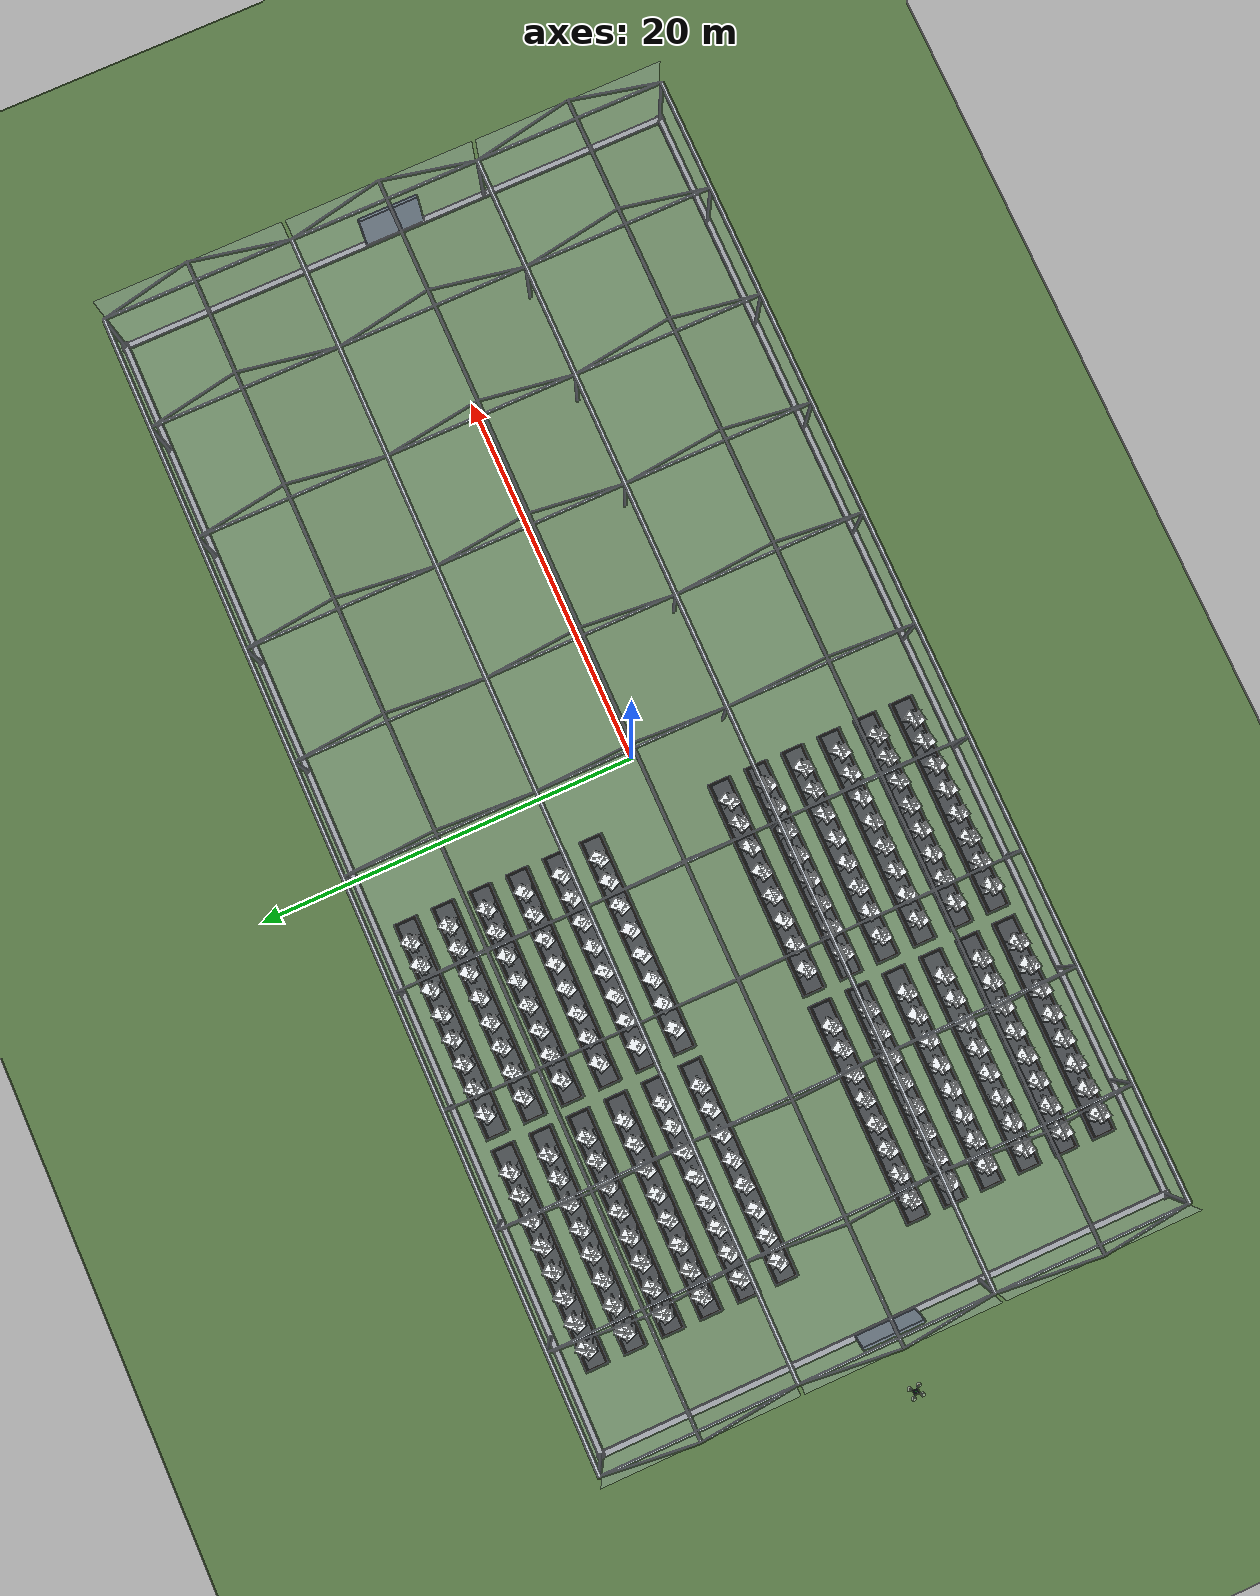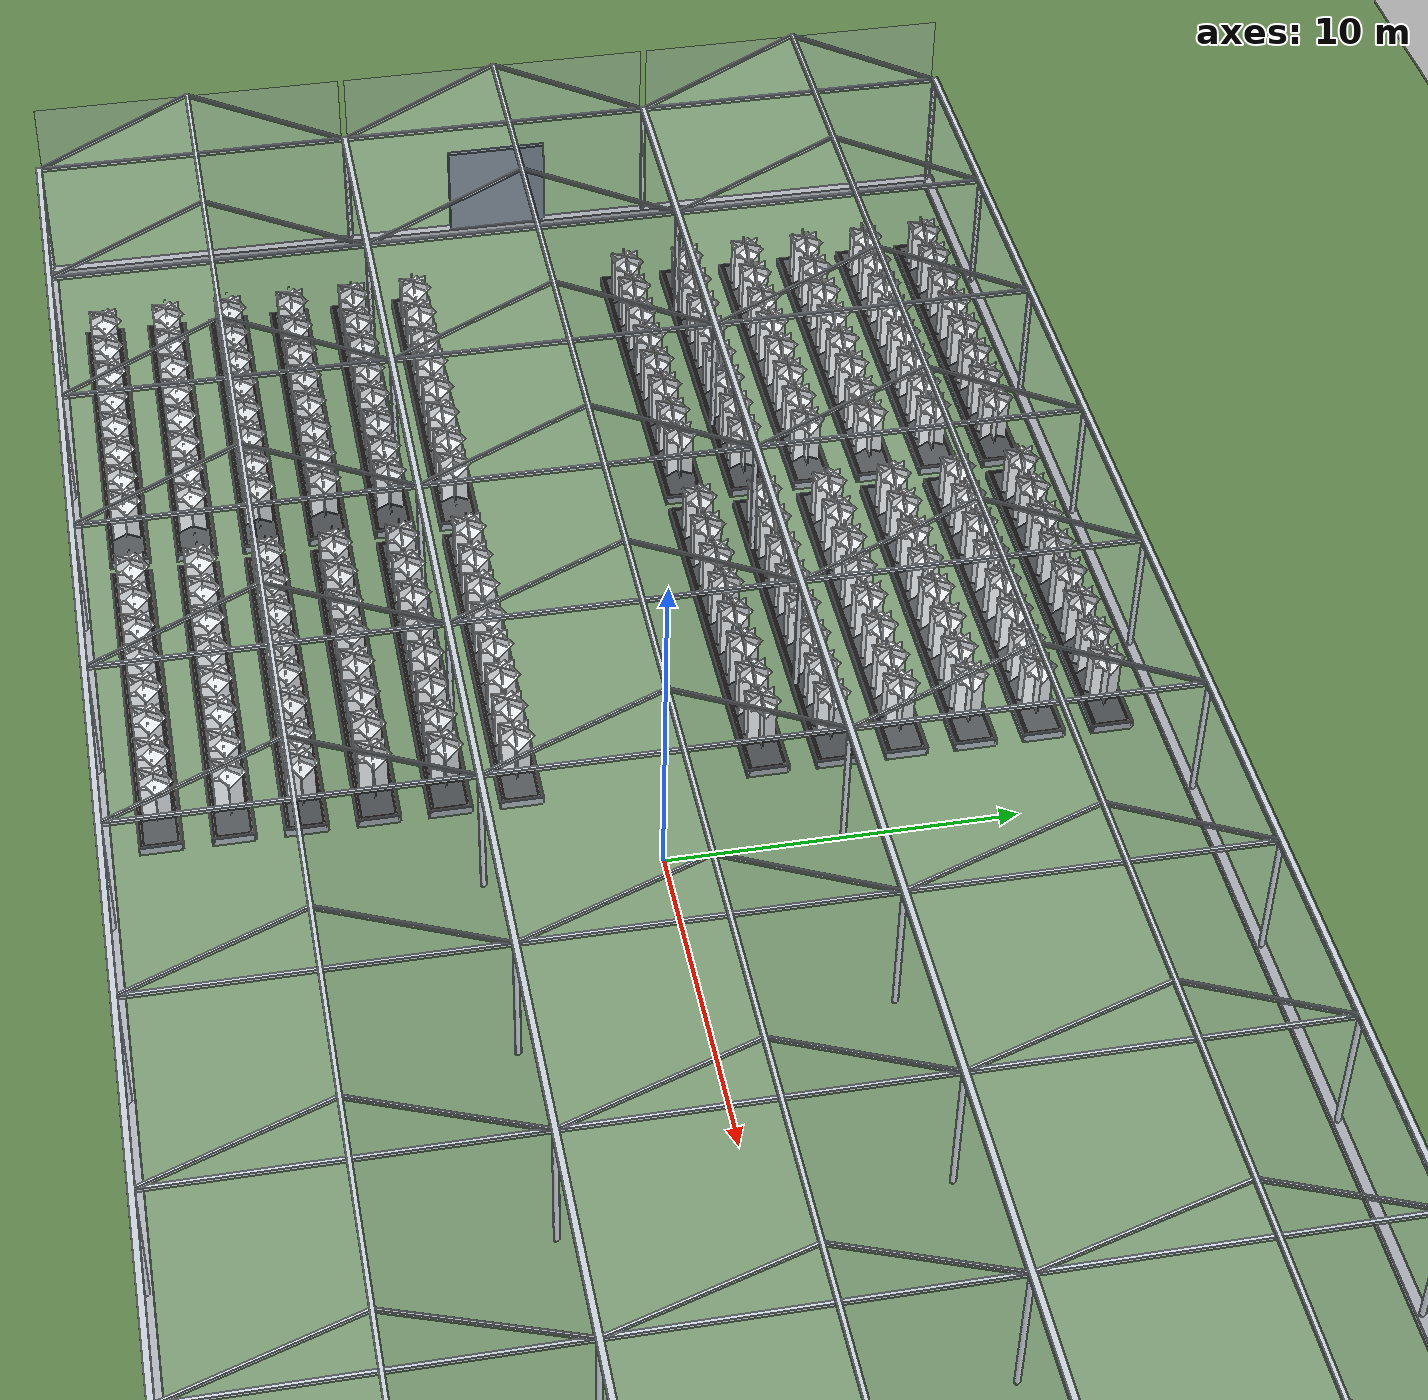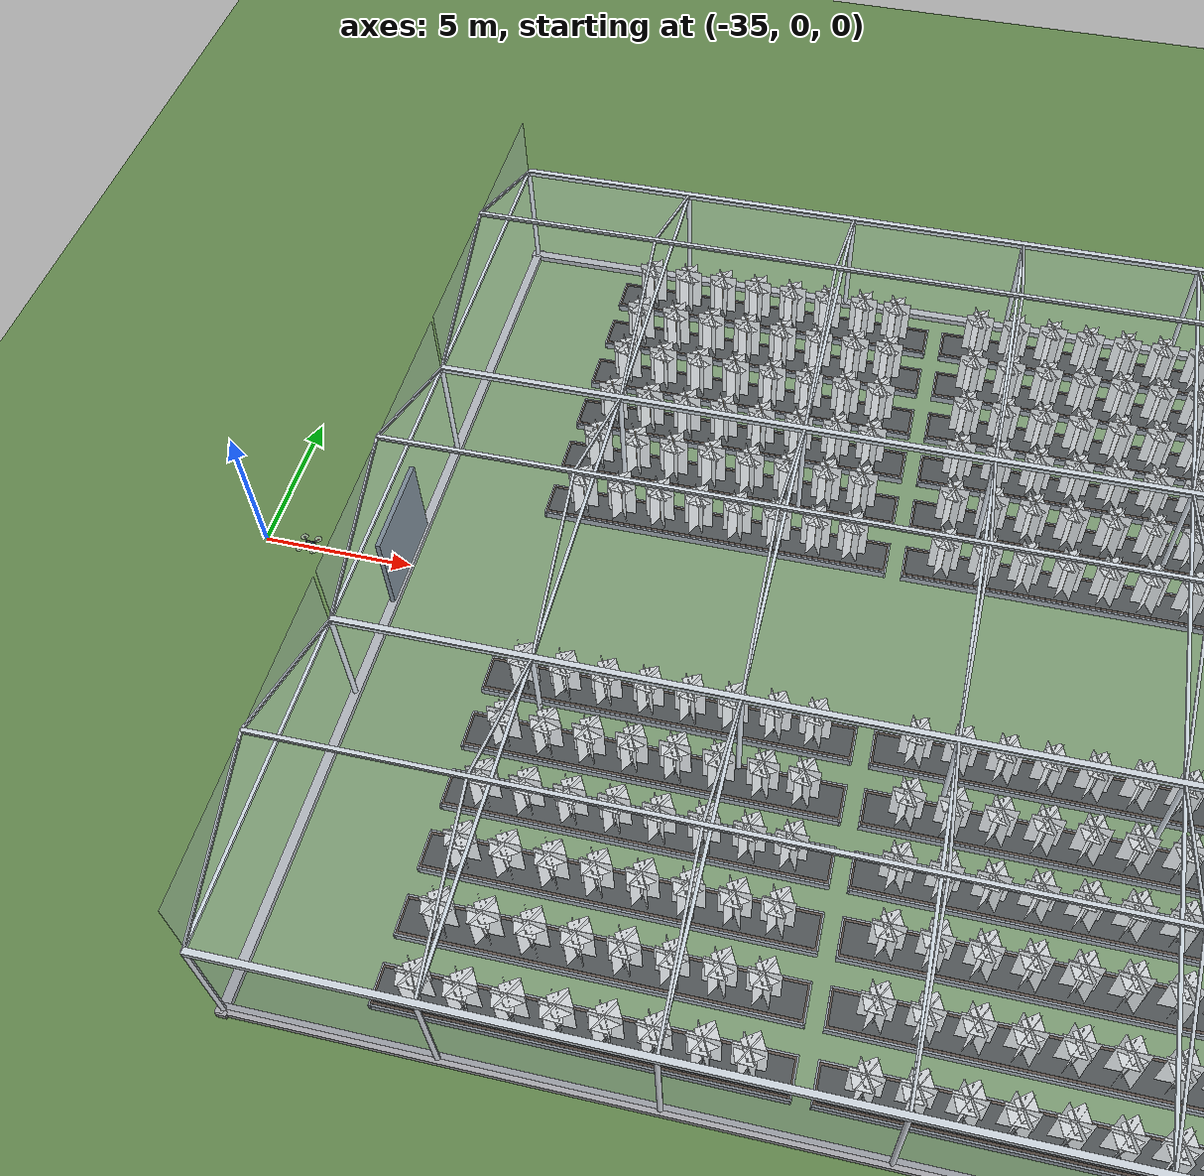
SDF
<sdf version="1.9">
 <world name="polyhouse_world">
  <model name="ground_plane">
   <static>true</static>
   <link name="ground_link">
    <collision name="ground_collision">
     <geometry><plane><normal>0 0 1</normal><size>150 150</size></plane></geometry>
    </collision>
    <visual name="ground_visual">
     <geometry><plane><normal>0 0 1</normal><size>150 150</size></plane></geometry>
     <material>
      <ambient>0.32 0.45 0.25 1</ambient>
      <diffuse>0.38 0.52 0.3 1</diffuse>
      <roughness>0.9</roughness>
     </material>
    </visual>
    <visual name="polyhouse_floor">
     <pose>0 0 0.005 0 0 0</pose>
     <geometry><box><size>60.2 30.2 0.01</size></box></geometry>
     <material>
      <ambient>0.28 0.22 0.18 1</ambient>
      <diffuse>0.34 0.27 0.22 1</diffuse>
      <roughness>0.95</roughness>
     </material>
    </visual>
    <visual name="main_walkway_longitudinal">
     <pose>0 0 0.015 0 0 0</pose>
     <geometry><box><size>60.0 3.0 0.02</size></box></geometry>
     <material>
      <ambient>0.62 0.64 0.65 1</ambient>
      <diffuse>0.72 0.74 0.75 1</diffuse>
      <roughness>0.7</roughness>
     </material>
    </visual>
    <visual name="main_walkway_transverse">
     <pose>0 0 0.016 0 0 0</pose>
     <geometry><box><size>3.0 30.0 0.02</size></box></geometry>
     <material>
      <ambient>0.62 0.64 0.65 1</ambient>
      <diffuse>0.72 0.74 0.75 1</diffuse>
      <roughness>0.7</roughness>
     </material>
    </visual>
   </link>
  </model>
  <include><uri>model://polyhouse_structure</uri><name>polyhouse_main</name></include>
  <include><uri>model://polyhouse_covering</uri><name>polyhouse_covering_main</name></include>
  <include><uri>model://crop_bed</uri><name>tomato_bed_001</name><pose>-20.5 3.5 0 0 0 0</pose></include>
  <include>
   <uri>model://tomato_plant</uri>
   <name>tomato_bed_001_p01</name>
   <pose>-25.00 3.5 0.25 0 0 0</pose>
  </include>
  <include>
   <uri>model://tomato_plant</uri>
   <name>tomato_bed_001_p02</name>
   <pose>-23.70 3.5 0.25 0 0 0</pose>
  </include>
  <include>
   <uri>model://tomato_plant</uri>
   <name>tomato_bed_001_p03</name>
   <pose>-22.40 3.5 0.25 0 0 0</pose>
  </include>
  <include>
   <uri>model://tomato_plant</uri>
   <name>tomato_bed_001_p04</name>
   <pose>-21.10 3.5 0.25 0 0 0</pose>
  </include>
  <include>
   <uri>model://tomato_plant</uri>
   <name>tomato_bed_001_p05</name>
   <pose>-19.80 3.5 0.25 0 0 0</pose>
  </include>
  <include>
   <uri>model://tomato_plant</uri>
   <name>tomato_bed_001_p06</name>
   <pose>-18.50 3.5 0.25 0 0 0</pose>
  </include>
  <include>
   <uri>model://tomato_plant</uri>
   <name>tomato_bed_001_p07</name>
   <pose>-17.20 3.5 0.25 0 0 0</pose>
  </include>
  <include>
   <uri>model://tomato_plant</uri>
   <name>tomato_bed_001_p08</name>
   <pose>-16.00 3.5 0.25 0 0 0</pose>
  </include>
  <include><uri>model://crop_bed</uri><name>tomato_bed_002</name><pose>-8.5 3.5 0 0 0 0</pose></include>
  <include>
   <uri>model://tomato_plant</uri>
   <name>tomato_bed_002_p01</name>
   <pose>-13.00 3.5 0.25 0 0 0</pose>
  </include>
  <include>
   <uri>model://tomato_plant</uri>
   <name>tomato_bed_002_p02</name>
   <pose>-11.70 3.5 0.25 0 0 0</pose>
  </include>
  <include>
   <uri>model://tomato_plant</uri>
   <name>tomato_bed_002_p03</name>
   <pose>-10.40 3.5 0.25 0 0 0</pose>
  </include>
  <include>
   <uri>model://tomato_plant</uri>
   <name>tomato_bed_002_p04</name>
   <pose>-9.10 3.5 0.25 0 0 0</pose>
  </include>
  <include>
   <uri>model://tomato_plant</uri>
   <name>tomato_bed_002_p05</name>
   <pose>-7.80 3.5 0.25 0 0 0</pose>
  </include>
  <include>
   <uri>model://tomato_plant</uri>
   <name>tomato_bed_002_p06</name>
   <pose>-6.50 3.5 0.25 0 0 0</pose>
  </include>
  <include>
   <uri>model://tomato_plant</uri>
   <name>tomato_bed_002_p07</name>
   <pose>-5.20 3.5 0.25 0 0 0</pose>
  </include>
  <include>
   <uri>model://tomato_plant</uri>
   <name>tomato_bed_002_p08</name>
   <pose>-4.00 3.5 0.25 0 0 0</pose>
  </include>
  <include><uri>model://crop_bed</uri><name>tomato_bed_003</name><pose>-20.5 5.5 0 0 0 0</pose></include>
  <include>
   <uri>model://tomato_plant</uri>
   <name>tomato_bed_003_p01</name>
   <pose>-25.00 5.5 0.25 0 0 0</pose>
  </include>
  <include>
   <uri>model://tomato_plant</uri>
   <name>tomato_bed_003_p02</name>
   <pose>-23.70 5.5 0.25 0 0 0</pose>
  </include>
  <include>
   <uri>model://tomato_plant</uri>
   <name>tomato_bed_003_p03</name>
   <pose>-22.40 5.5 0.25 0 0 0</pose>
  </include>
  <include>
   <uri>model://tomato_plant</uri>
   <name>tomato_bed_003_p04</name>
   <pose>-21.10 5.5 0.25 0 0 0</pose>
  </include>
  <include>
   <uri>model://tomato_plant</uri>
   <name>tomato_bed_003_p05</name>
   <pose>-19.80 5.5 0.25 0 0 0</pose>
  </include>
  <include>
   <uri>model://tomato_plant</uri>
   <name>tomato_bed_003_p06</name>
   <pose>-18.50 5.5 0.25 0 0 0</pose>
  </include>
  <include>
   <uri>model://tomato_plant</uri>
   <name>tomato_bed_003_p07</name>
   <pose>-17.20 5.5 0.25 0 0 0</pose>
  </include>
  <include>
   <uri>model://tomato_plant</uri>
   <name>tomato_bed_003_p08</name>
   <pose>-16.00 5.5 0.25 0 0 0</pose>
  </include>
  <include><uri>model://crop_bed</uri><name>tomato_bed_004</name><pose>-8.5 5.5 0 0 0 0</pose></include>
  <include>
   <uri>model://tomato_plant</uri>
   <name>tomato_bed_004_p01</name>
   <pose>-13.00 5.5 0.25 0 0 0</pose>
  </include>
  <include>
   <uri>model://tomato_plant</uri>
   <name>tomato_bed_004_p02</name>
   <pose>-11.70 5.5 0.25 0 0 0</pose>
  </include>
  <include>
   <uri>model://tomato_plant</uri>
   <name>tomato_bed_004_p03</name>
   <pose>-10.40 5.5 0.25 0 0 0</pose>
  </include>
  <include>
   <uri>model://tomato_plant</uri>
   <name>tomato_bed_004_p04</name>
   <pose>-9.10 5.5 0.25 0 0 0</pose>
  </include>
  <include>
   <uri>model://tomato_plant</uri>
   <name>tomato_bed_004_p05</name>
   <pose>-7.80 5.5 0.25 0 0 0</pose>
  </include>
  <include>
   <uri>model://tomato_plant</uri>
   <name>tomato_bed_004_p06</name>
   <pose>-6.50 5.5 0.25 0 0 0</pose>
  </include>
  <include>
   <uri>model://tomato_plant</uri>
   <name>tomato_bed_004_p07</name>
   <pose>-5.20 5.5 0.25 0 0 0</pose>
  </include>
  <include>
   <uri>model://tomato_plant</uri>
   <name>tomato_bed_004_p08</name>
   <pose>-4.00 5.5 0.25 0 0 0</pose>
  </include>
  <include><uri>model://crop_bed</uri><name>tomato_bed_005</name><pose>-20.5 7.5 0 0 0 0</pose></include>
  <include>
   <uri>model://tomato_plant</uri>
   <name>tomato_bed_005_p01</name>
   <pose>-25.00 7.5 0.25 0 0 0</pose>
  </include>
  <include>
   <uri>model://tomato_plant</uri>
   <name>tomato_bed_005_p02</name>
   <pose>-23.70 7.5 0.25 0 0 0</pose>
  </include>
  <include>
   <uri>model://tomato_plant</uri>
   <name>tomato_bed_005_p03</name>
   <pose>-22.40 7.5 0.25 0 0 0</pose>
  </include>
  <include>
   <uri>model://tomato_plant</uri>
   <name>tomato_bed_005_p04</name>
   <pose>-21.10 7.5 0.25 0 0 0</pose>
  </include>
  <include>
   <uri>model://tomato_plant</uri>
   <name>tomato_bed_005_p05</name>
   <pose>-19.80 7.5 0.25 0 0 0</pose>
  </include>
  <include>
   <uri>model://tomato_plant</uri>
   <name>tomato_bed_005_p06</name>
   <pose>-18.50 7.5 0.25 0 0 0</pose>
  </include>
  <include>
   <uri>model://tomato_plant</uri>
   <name>tomato_bed_005_p07</name>
   <pose>-17.20 7.5 0.25 0 0 0</pose>
  </include>
  <include>
   <uri>model://tomato_plant</uri>
   <name>tomato_bed_005_p08</name>
   <pose>-16.00 7.5 0.25 0 0 0</pose>
  </include>
  <include><uri>model://crop_bed</uri><name>tomato_bed_006</name><pose>-8.5 7.5 0 0 0 0</pose></include>
  <include>
   <uri>model://tomato_plant</uri>
   <name>tomato_bed_006_p01</name>
   <pose>-13.00 7.5 0.25 0 0 0</pose>
  </include>
  <include>
   <uri>model://tomato_plant</uri>
   <name>tomato_bed_006_p02</name>
   <pose>-11.70 7.5 0.25 0 0 0</pose>
  </include>
  <include>
   <uri>model://tomato_plant</uri>
   <name>tomato_bed_006_p03</name>
   <pose>-10.40 7.5 0.25 0 0 0</pose>
  </include>
  <include>
   <uri>model://tomato_plant</uri>
   <name>tomato_bed_006_p04</name>
   <pose>-9.10 7.5 0.25 0 0 0</pose>
  </include>
  <include>
   <uri>model://tomato_plant</uri>
   <name>tomato_bed_006_p05</name>
   <pose>-7.80 7.5 0.25 0 0 0</pose>
  </include>
  <include>
   <uri>model://tomato_plant</uri>
   <name>tomato_bed_006_p06</name>
   <pose>-6.50 7.5 0.25 0 0 0</pose>
  </include>
  <include>
   <uri>model://tomato_plant</uri>
   <name>tomato_bed_006_p07</name>
   <pose>-5.20 7.5 0.25 0 0 0</pose>
  </include>
  <include>
   <uri>model://tomato_plant</uri>
   <name>tomato_bed_006_p08</name>
   <pose>-4.00 7.5 0.25 0 0 0</pose>
  </include>
  <include><uri>model://crop_bed</uri><name>tomato_bed_007</name><pose>-20.5 9.5 0 0 0 0</pose></include>
  <include>
   <uri>model://tomato_plant</uri>
   <name>tomato_bed_007_p01</name>
   <pose>-25.00 9.5 0.25 0 0 0</pose>
  </include>
  <include>
   <uri>model://tomato_plant</uri>
   <name>tomato_bed_007_p02</name>
   <pose>-23.70 9.5 0.25 0 0 0</pose>
  </include>
  <include>
   <uri>model://tomato_plant</uri>
   <name>tomato_bed_007_p03</name>
   <pose>-22.40 9.5 0.25 0 0 0</pose>
  </include>
  <include>
   <uri>model://tomato_plant</uri>
   <name>tomato_bed_007_p04</name>
   <pose>-21.10 9.5 0.25 0 0 0</pose>
  </include>
  <include>
   <uri>model://tomato_plant</uri>
   <name>tomato_bed_007_p05</name>
   <pose>-19.80 9.5 0.25 0 0 0</pose>
  </include>
  <include>
   <uri>model://tomato_plant</uri>
   <name>tomato_bed_007_p06</name>
   <pose>-18.50 9.5 0.25 0 0 0</pose>
  </include>
  <include>
   <uri>model://tomato_plant</uri>
   <name>tomato_bed_007_p07</name>
   <pose>-17.20 9.5 0.25 0 0 0</pose>
  </include>
  <include>
   <uri>model://tomato_plant</uri>
   <name>tomato_bed_007_p08</name>
   <pose>-16.00 9.5 0.25 0 0 0</pose>
  </include>
  <include><uri>model://crop_bed</uri><name>tomato_bed_008</name><pose>-8.5 9.5 0 0 0 0</pose></include>
  <include>
   <uri>model://tomato_plant</uri>
   <name>tomato_bed_008_p01</name>
   <pose>-13.00 9.5 0.25 0 0 0</pose>
  </include>
  <include>
   <uri>model://tomato_plant</uri>
   <name>tomato_bed_008_p02</name>
   <pose>-11.70 9.5 0.25 0 0 0</pose>
  </include>
  <include>
   <uri>model://tomato_plant</uri>
   <name>tomato_bed_008_p03</name>
   <pose>-10.40 9.5 0.25 0 0 0</pose>
  </include>
  <include>
   <uri>model://tomato_plant</uri>
   <name>tomato_bed_008_p04</name>
   <pose>-9.10 9.5 0.25 0 0 0</pose>
  </include>
  <include>
   <uri>model://tomato_plant</uri>
   <name>tomato_bed_008_p05</name>
   <pose>-7.80 9.5 0.25 0 0 0</pose>
  </include>
  <include>
   <uri>model://tomato_plant</uri>
   <name>tomato_bed_008_p06</name>
   <pose>-6.50 9.5 0.25 0 0 0</pose>
  </include>
  <include>
   <uri>model://tomato_plant</uri>
   <name>tomato_bed_008_p07</name>
   <pose>-5.20 9.5 0.25 0 0 0</pose>
  </include>
  <include>
   <uri>model://tomato_plant</uri>
   <name>tomato_bed_008_p08</name>
   <pose>-4.00 9.5 0.25 0 0 0</pose>
  </include>
  <include><uri>model://crop_bed</uri><name>tomato_bed_009</name><pose>-20.5 11.5 0 0 0 0</pose></include>
  <include>
   <uri>model://tomato_plant</uri>
   <name>tomato_bed_009_p01</name>
   <pose>-25.00 11.5 0.25 0 0 0</pose>
  </include>
  <include>
   <uri>model://tomato_plant</uri>
   <name>tomato_bed_009_p02</name>
   <pose>-23.70 11.5 0.25 0 0 0</pose>
  </include>
  <include>
   <uri>model://tomato_plant</uri>
   <name>tomato_bed_009_p03</name>
   <pose>-22.40 11.5 0.25 0 0 0</pose>
  </include>
  <include>
   <uri>model://tomato_plant</uri>
   <name>tomato_bed_009_p04</name>
   <pose>-21.10 11.5 0.25 0 0 0</pose>
  </include>
  <include>
   <uri>model://tomato_plant</uri>
   <name>tomato_bed_009_p05</name>
   <pose>-19.80 11.5 0.25 0 0 0</pose>
  </include>
  <include>
   <uri>model://tomato_plant</uri>
   <name>tomato_bed_009_p06</name>
   <pose>-18.50 11.5 0.25 0 0 0</pose>
  </include>
  <include>
   <uri>model://tomato_plant</uri>
   <name>tomato_bed_009_p07</name>
   <pose>-17.20 11.5 0.25 0 0 0</pose>
  </include>
  <include>
   <uri>model://tomato_plant</uri>
   <name>tomato_bed_009_p08</name>
   <pose>-16.00 11.5 0.25 0 0 0</pose>
  </include>
  <include><uri>model://crop_bed</uri><name>tomato_bed_010</name><pose>-8.5 11.5 0 0 0 0</pose></include>
  <include>
   <uri>model://tomato_plant</uri>
   <name>tomato_bed_010_p01</name>
   <pose>-13.00 11.5 0.25 0 0 0</pose>
  </include>
  <include>
   <uri>model://tomato_plant</uri>
   <name>tomato_bed_010_p02</name>
   <pose>-11.70 11.5 0.25 0 0 0</pose>
  </include>
  <include>
   <uri>model://tomato_plant</uri>
   <name>tomato_bed_010_p03</name>
   <pose>-10.40 11.5 0.25 0 0 0</pose>
  </include>
  <include>
   <uri>model://tomato_plant</uri>
   <name>tomato_bed_010_p04</name>
   <pose>-9.10 11.5 0.25 0 0 0</pose>
  </include>
  <include>
   <uri>model://tomato_plant</uri>
   <name>tomato_bed_010_p05</name>
   <pose>-7.80 11.5 0.25 0 0 0</pose>
  </include>
  <include>
   <uri>model://tomato_plant</uri>
   <name>tomato_bed_010_p06</name>
   <pose>-6.50 11.5 0.25 0 0 0</pose>
  </include>
  <include>
   <uri>model://tomato_plant</uri>
   <name>tomato_bed_010_p07</name>
   <pose>-5.20 11.5 0.25 0 0 0</pose>
  </include>
  <include>
   <uri>model://tomato_plant</uri>
   <name>tomato_bed_010_p08</name>
   <pose>-4.00 11.5 0.25 0 0 0</pose>
  </include>
  <include><uri>model://crop_bed</uri><name>tomato_bed_011</name><pose>-20.5 13.5 0 0 0 0</pose></include>
  <include>
   <uri>model://tomato_plant</uri>
   <name>tomato_bed_011_p01</name>
   <pose>-25.00 13.5 0.25 0 0 0</pose>
  </include>
  <include>
   <uri>model://tomato_plant</uri>
   <name>tomato_bed_011_p02</name>
   <pose>-23.70 13.5 0.25 0 0 0</pose>
  </include>
  <include>
   <uri>model://tomato_plant</uri>
   <name>tomato_bed_011_p03</name>
   <pose>-22.40 13.5 0.25 0 0 0</pose>
  </include>
  <include>
   <uri>model://tomato_plant</uri>
   <name>tomato_bed_011_p04</name>
   <pose>-21.10 13.5 0.25 0 0 0</pose>
  </include>
  <include>
   <uri>model://tomato_plant</uri>
   <name>tomato_bed_011_p05</name>
   <pose>-19.80 13.5 0.25 0 0 0</pose>
  </include>
  <include>
   <uri>model://tomato_plant</uri>
   <name>tomato_bed_011_p06</name>
   <pose>-18.50 13.5 0.25 0 0 0</pose>
  </include>
  <include>
   <uri>model://tomato_plant</uri>
   <name>tomato_bed_011_p07</name>
   <pose>-17.20 13.5 0.25 0 0 0</pose>
  </include>
  <include>
   <uri>model://tomato_plant</uri>
   <name>tomato_bed_011_p08</name>
   <pose>-16.00 13.5 0.25 0 0 0</pose>
  </include>
  <include><uri>model://crop_bed</uri><name>tomato_bed_012</name><pose>-8.5 13.5 0 0 0 0</pose></include>
  <include>
   <uri>model://tomato_plant</uri>
   <name>tomato_bed_012_p01</name>
   <pose>-13.00 13.5 0.25 0 0 0</pose>
  </include>
  <include>
   <uri>model://tomato_plant</uri>
   <name>tomato_bed_012_p02</name>
   <pose>-11.70 13.5 0.25 0 0 0</pose>
  </include>
  <include>
   <uri>model://tomato_plant</uri>
   <name>tomato_bed_012_p03</name>
   <pose>-10.40 13.5 0.25 0 0 0</pose>
  </include>
  <include>
   <uri>model://tomato_plant</uri>
   <name>tomato_bed_012_p04</name>
   <pose>-9.10 13.5 0.25 0 0 0</pose>
  </include>
  <include>
   <uri>model://tomato_plant</uri>
   <name>tomato_bed_012_p05</name>
   <pose>-7.80 13.5 0.25 0 0 0</pose>
  </include>
  <include>
   <uri>model://tomato_plant</uri>
   <name>tomato_bed_012_p06</name>
   <pose>-6.50 13.5 0.25 0 0 0</pose>
  </include>
  <include>
   <uri>model://tomato_plant</uri>
   <name>tomato_bed_012_p07</name>
   <pose>-5.20 13.5 0.25 0 0 0</pose>
  </include>
  <include>
   <uri>model://tomato_plant</uri>
   <name>tomato_bed_012_p08</name>
   <pose>-4.00 13.5 0.25 0 0 0</pose>
  </include>
  <include><uri>model://crop_bed</uri><name>cucumber_bed_001</name><pose>-20.5 -13.5 0 0 0 0</pose></include>
  <include>
   <uri>model://cucumber_plant</uri>
   <name>cucumber_bed_001_p01</name>
   <pose>-25.00 -13.5 0.25 0 0 0</pose>
  </include>
  <include>
   <uri>model://cucumber_plant</uri>
   <name>cucumber_bed_001_p02</name>
   <pose>-23.70 -13.5 0.25 0 0 0</pose>
  </include>
  <include>
   <uri>model://cucumber_plant</uri>
   <name>cucumber_bed_001_p03</name>
   <pose>-22.40 -13.5 0.25 0 0 0</pose>
  </include>
  <include>
   <uri>model://cucumber_plant</uri>
   <name>cucumber_bed_001_p04</name>
   <pose>-21.10 -13.5 0.25 0 0 0</pose>
  </include>
  <include>
   <uri>model://cucumber_plant</uri>
   <name>cucumber_bed_001_p05</name>
   <pose>-19.80 -13.5 0.25 0 0 0</pose>
  </include>
  <include>
   <uri>model://cucumber_plant</uri>
   <name>cucumber_bed_001_p06</name>
   <pose>-18.50 -13.5 0.25 0 0 0</pose>
  </include>
  <include>
   <uri>model://cucumber_plant</uri>
   <name>cucumber_bed_001_p07</name>
   <pose>-17.20 -13.5 0.25 0 0 0</pose>
  </include>
  <include>
   <uri>model://cucumber_plant</uri>
   <name>cucumber_bed_001_p08</name>
   <pose>-16.00 -13.5 0.25 0 0 0</pose>
  </include>
  <include><uri>model://crop_bed</uri><name>cucumber_bed_002</name><pose>-8.5 -13.5 0 0 0 0</pose></include>
  <include>
   <uri>model://cucumber_plant</uri>
   <name>cucumber_bed_002_p01</name>
   <pose>-13.00 -13.5 0.25 0 0 0</pose>
  </include>
  <include>
   <uri>model://cucumber_plant</uri>
   <name>cucumber_bed_002_p02</name>
   <pose>-11.70 -13.5 0.25 0 0 0</pose>
  </include>
  <include>
   <uri>model://cucumber_plant</uri>
   <name>cucumber_bed_002_p03</name>
   <pose>-10.40 -13.5 0.25 0 0 0</pose>
  </include>
  <include>
   <uri>model://cucumber_plant</uri>
   <name>cucumber_bed_002_p04</name>
   <pose>-9.10 -13.5 0.25 0 0 0</pose>
  </include>
  <include>
   <uri>model://cucumber_plant</uri>
   <name>cucumber_bed_002_p05</name>
   <pose>-7.80 -13.5 0.25 0 0 0</pose>
  </include>
  <include>
   <uri>model://cucumber_plant</uri>
   <name>cucumber_bed_002_p06</name>
   <pose>-6.50 -13.5 0.25 0 0 0</pose>
  </include>
  <include>
   <uri>model://cucumber_plant</uri>
   <name>cucumber_bed_002_p07</name>
   <pose>-5.20 -13.5 0.25 0 0 0</pose>
  </include>
  <include>
   <uri>model://cucumber_plant</uri>
   <name>cucumber_bed_002_p08</name>
   <pose>-4.00 -13.5 0.25 0 0 0</pose>
  </include>
  <include><uri>model://crop_bed</uri><name>cucumber_bed_003</name><pose>-20.5 -11.5 0 0 0 0</pose></include>
  <include>
   <uri>model://cucumber_plant</uri>
   <name>cucumber_bed_003_p01</name>
   <pose>-25.00 -11.5 0.25 0 0 0</pose>
  </include>
  <include>
   <uri>model://cucumber_plant</uri>
   <name>cucumber_bed_003_p02</name>
   <pose>-23.70 -11.5 0.25 0 0 0</pose>
  </include>
  <include>
   <uri>model://cucumber_plant</uri>
   <name>cucumber_bed_003_p03</name>
   <pose>-22.40 -11.5 0.25 0 0 0</pose>
  </include>
  <include>
   <uri>model://cucumber_plant</uri>
   <name>cucumber_bed_003_p04</name>
   <pose>-21.10 -11.5 0.25 0 0 0</pose>
  </include>
  <include>
   <uri>model://cucumber_plant</uri>
   <name>cucumber_bed_003_p05</name>
   <pose>-19.80 -11.5 0.25 0 0 0</pose>
  </include>
  <include>
   <uri>model://cucumber_plant</uri>
   <name>cucumber_bed_003_p06</name>
   <pose>-18.50 -11.5 0.25 0 0 0</pose>
  </include>
  <include>
   <uri>model://cucumber_plant</uri>
   <name>cucumber_bed_003_p07</name>
   <pose>-17.20 -11.5 0.25 0 0 0</pose>
  </include>
  <include>
   <uri>model://cucumber_plant</uri>
   <name>cucumber_bed_003_p08</name>
   <pose>-16.00 -11.5 0.25 0 0 0</pose>
  </include>
  <include><uri>model://crop_bed</uri><name>cucumber_bed_004</name><pose>-8.5 -11.5 0 0 0 0</pose></include>
  <include>
   <uri>model://cucumber_plant</uri>
   <name>cucumber_bed_004_p01</name>
   <pose>-13.00 -11.5 0.25 0 0 0</pose>
  </include>
  <include>
   <uri>model://cucumber_plant</uri>
   <name>cucumber_bed_004_p02</name>
   <pose>-11.70 -11.5 0.25 0 0 0</pose>
  </include>
  <include>
   <uri>model://cucumber_plant</uri>
   <name>cucumber_bed_004_p03</name>
   <pose>-10.40 -11.5 0.25 0 0 0</pose>
  </include>
  <include>
   <uri>model://cucumber_plant</uri>
   <name>cucumber_bed_004_p04</name>
   <pose>-9.10 -11.5 0.25 0 0 0</pose>
  </include>
  <include>
   <uri>model://cucumber_plant</uri>
   <name>cucumber_bed_004_p05</name>
   <pose>-7.80 -11.5 0.25 0 0 0</pose>
  </include>
  <include>
   <uri>model://cucumber_plant</uri>
   <name>cucumber_bed_004_p06</name>
   <pose>-6.50 -11.5 0.25 0 0 0</pose>
  </include>
  <include>
   <uri>model://cucumber_plant</uri>
   <name>cucumber_bed_004_p07</name>
   <pose>-5.20 -11.5 0.25 0 0 0</pose>
  </include>
  <include>
   <uri>model://cucumber_plant</uri>
   <name>cucumber_bed_004_p08</name>
   <pose>-4.00 -11.5 0.25 0 0 0</pose>
  </include>
  <include><uri>model://crop_bed</uri><name>cucumber_bed_005</name><pose>-20.5 -9.5 0 0 0 0</pose></include>
  <include>
   <uri>model://cucumber_plant</uri>
   <name>cucumber_bed_005_p01</name>
   <pose>-25.00 -9.5 0.25 0 0 0</pose>
  </include>
  <include>
   <uri>model://cucumber_plant</uri>
   <name>cucumber_bed_005_p02</name>
   <pose>-23.70 -9.5 0.25 0 0 0</pose>
  </include>
  <include>
   <uri>model://cucumber_plant</uri>
   <name>cucumber_bed_005_p03</name>
   <pose>-22.40 -9.5 0.25 0 0 0</pose>
  </include>
  <include>
   <uri>model://cucumber_plant</uri>
   <name>cucumber_bed_005_p04</name>
   <pose>-21.10 -9.5 0.25 0 0 0</pose>
  </include>
  <include>
   <uri>model://cucumber_plant</uri>
   <name>cucumber_bed_005_p05</name>
   <pose>-19.80 -9.5 0.25 0 0 0</pose>
  </include>
  <include>
   <uri>model://cucumber_plant</uri>
   <name>cucumber_bed_005_p06</name>
   <pose>-18.50 -9.5 0.25 0 0 0</pose>
  </include>
  <include>
   <uri>model://cucumber_plant</uri>
   <name>cucumber_bed_005_p07</name>
   <pose>-17.20 -9.5 0.25 0 0 0</pose>
  </include>
  <include>
   <uri>model://cucumber_plant</uri>
   <name>cucumber_bed_005_p08</name>
   <pose>-16.00 -9.5 0.25 0 0 0</pose>
  </include>
  <include><uri>model://crop_bed</uri><name>cucumber_bed_006</name><pose>-8.5 -9.5 0 0 0 0</pose></include>
  <include>
   <uri>model://cucumber_plant</uri>
   <name>cucumber_bed_006_p01</name>
   <pose>-13.00 -9.5 0.25 0 0 0</pose>
  </include>
  <include>
   <uri>model://cucumber_plant</uri>
   <name>cucumber_bed_006_p02</name>
   <pose>-11.70 -9.5 0.25 0 0 0</pose>
  </include>
  <include>
   <uri>model://cucumber_plant</uri>
   <name>cucumber_bed_006_p03</name>
   <pose>-10.40 -9.5 0.25 0 0 0</pose>
  </include>
  <include>
   <uri>model://cucumber_plant</uri>
   <name>cucumber_bed_006_p04</name>
   <pose>-9.10 -9.5 0.25 0 0 0</pose>
  </include>
  <include>
   <uri>model://cucumber_plant</uri>
   <name>cucumber_bed_006_p05</name>
   <pose>-7.80 -9.5 0.25 0 0 0</pose>
  </include>
  <include>
   <uri>model://cucumber_plant</uri>
   <name>cucumber_bed_006_p06</name>
   <pose>-6.50 -9.5 0.25 0 0 0</pose>
  </include>
  <include>
   <uri>model://cucumber_plant</uri>
   <name>cucumber_bed_006_p07</name>
   <pose>-5.20 -9.5 0.25 0 0 0</pose>
  </include>
  <include>
   <uri>model://cucumber_plant</uri>
   <name>cucumber_bed_006_p08</name>
   <pose>-4.00 -9.5 0.25 0 0 0</pose>
  </include>
  <include><uri>model://crop_bed</uri><name>cucumber_bed_007</name><pose>-20.5 -7.5 0 0 0 0</pose></include>
  <include>
   <uri>model://cucumber_plant</uri>
   <name>cucumber_bed_007_p01</name>
   <pose>-25.00 -7.5 0.25 0 0 0</pose>
  </include>
  <include>
   <uri>model://cucumber_plant</uri>
   <name>cucumber_bed_007_p02</name>
   <pose>-23.70 -7.5 0.25 0 0 0</pose>
  </include>
  <include>
   <uri>model://cucumber_plant</uri>
   <name>cucumber_bed_007_p03</name>
   <pose>-22.40 -7.5 0.25 0 0 0</pose>
  </include>
  <include>
   <uri>model://cucumber_plant</uri>
   <name>cucumber_bed_007_p04</name>
   <pose>-21.10 -7.5 0.25 0 0 0</pose>
  </include>
  <include>
   <uri>model://cucumber_plant</uri>
   <name>cucumber_bed_007_p05</name>
   <pose>-19.80 -7.5 0.25 0 0 0</pose>
  </include>
  <include>
   <uri>model://cucumber_plant</uri>
   <name>cucumber_bed_007_p06</name>
   <pose>-18.50 -7.5 0.25 0 0 0</pose>
  </include>
  <include>
   <uri>model://cucumber_plant</uri>
   <name>cucumber_bed_007_p07</name>
   <pose>-17.20 -7.5 0.25 0 0 0</pose>
  </include>
  <include>
   <uri>model://cucumber_plant</uri>
   <name>cucumber_bed_007_p08</name>
   <pose>-16.00 -7.5 0.25 0 0 0</pose>
  </include>
  <include><uri>model://crop_bed</uri><name>cucumber_bed_008</name><pose>-8.5 -7.5 0 0 0 0</pose></include>
  <include>
   <uri>model://cucumber_plant</uri>
   <name>cucumber_bed_008_p01</name>
   <pose>-13.00 -7.5 0.25 0 0 0</pose>
  </include>
  <include>
   <uri>model://cucumber_plant</uri>
   <name>cucumber_bed_008_p02</name>
   <pose>-11.70 -7.5 0.25 0 0 0</pose>
  </include>
  <include>
   <uri>model://cucumber_plant</uri>
   <name>cucumber_bed_008_p03</name>
   <pose>-10.40 -7.5 0.25 0 0 0</pose>
  </include>
  <include>
   <uri>model://cucumber_plant</uri>
   <name>cucumber_bed_008_p04</name>
   <pose>-9.10 -7.5 0.25 0 0 0</pose>
  </include>
  <include>
   <uri>model://cucumber_plant</uri>
   <name>cucumber_bed_008_p05</name>
   <pose>-7.80 -7.5 0.25 0 0 0</pose>
  </include>
  <include>
   <uri>model://cucumber_plant</uri>
   <name>cucumber_bed_008_p06</name>
   <pose>-6.50 -7.5 0.25 0 0 0</pose>
  </include>
  <include>
   <uri>model://cucumber_plant</uri>
   <name>cucumber_bed_008_p07</name>
   <pose>-5.20 -7.5 0.25 0 0 0</pose>
  </include>
  <include>
   <uri>model://cucumber_plant</uri>
   <name>cucumber_bed_008_p08</name>
   <pose>-4.00 -7.5 0.25 0 0 0</pose>
  </include>
  <include><uri>model://crop_bed</uri><name>cucumber_bed_009</name><pose>-20.5 -5.5 0 0 0 0</pose></include>
  <include>
   <uri>model://cucumber_plant</uri>
   <name>cucumber_bed_009_p01</name>
   <pose>-25.00 -5.5 0.25 0 0 0</pose>
  </include>
  <include>
   <uri>model://cucumber_plant</uri>
   <name>cucumber_bed_009_p02</name>
   <pose>-23.70 -5.5 0.25 0 0 0</pose>
  </include>
  <include>
   <uri>model://cucumber_plant</uri>
   <name>cucumber_bed_009_p03</name>
   <pose>-22.40 -5.5 0.25 0 0 0</pose>
  </include>
  <include>
   <uri>model://cucumber_plant</uri>
   <name>cucumber_bed_009_p04</name>
   <pose>-21.10 -5.5 0.25 0 0 0</pose>
  </include>
  <include>
   <uri>model://cucumber_plant</uri>
   <name>cucumber_bed_009_p05</name>
   <pose>-19.80 -5.5 0.25 0 0 0</pose>
  </include>
  <include>
   <uri>model://cucumber_plant</uri>
   <name>cucumber_bed_009_p06</name>
   <pose>-18.50 -5.5 0.25 0 0 0</pose>
  </include>
  <include>
   <uri>model://cucumber_plant</uri>
   <name>cucumber_bed_009_p07</name>
   <pose>-17.20 -5.5 0.25 0 0 0</pose>
  </include>
  <include>
   <uri>model://cucumber_plant</uri>
   <name>cucumber_bed_009_p08</name>
   <pose>-16.00 -5.5 0.25 0 0 0</pose>
  </include>
  <include><uri>model://crop_bed</uri><name>cucumber_bed_010</name><pose>-8.5 -5.5 0 0 0 0</pose></include>
  <include>
   <uri>model://cucumber_plant</uri>
   <name>cucumber_bed_010_p01</name>
   <pose>-13.00 -5.5 0.25 0 0 0</pose>
  </include>
  <include>
   <uri>model://cucumber_plant</uri>
   <name>cucumber_bed_010_p02</name>
   <pose>-11.70 -5.5 0.25 0 0 0</pose>
  </include>
  <include>
   <uri>model://cucumber_plant</uri>
   <name>cucumber_bed_010_p03</name>
   <pose>-10.40 -5.5 0.25 0 0 0</pose>
  </include>
  <include>
   <uri>model://cucumber_plant</uri>
   <name>cucumber_bed_010_p04</name>
   <pose>-9.10 -5.5 0.25 0 0 0</pose>
  </include>
  <include>
   <uri>model://cucumber_plant</uri>
   <name>cucumber_bed_010_p05</name>
   <pose>-7.80 -5.5 0.25 0 0 0</pose>
  </include>
  <include>
   <uri>model://cucumber_plant</uri>
   <name>cucumber_bed_010_p06</name>
   <pose>-6.50 -5.5 0.25 0 0 0</pose>
  </include>
  <include>
   <uri>model://cucumber_plant</uri>
   <name>cucumber_bed_010_p07</name>
   <pose>-5.20 -5.5 0.25 0 0 0</pose>
  </include>
  <include>
   <uri>model://cucumber_plant</uri>
   <name>cucumber_bed_010_p08</name>
   <pose>-4.00 -5.5 0.25 0 0 0</pose>
  </include>
  <include><uri>model://crop_bed</uri><name>cucumber_bed_011</name><pose>-20.5 -3.5 0 0 0 0</pose></include>
  <include>
   <uri>model://cucumber_plant</uri>
   <name>cucumber_bed_011_p01</name>
   <pose>-25.00 -3.5 0.25 0 0 0</pose>
  </include>
  <include>
   <uri>model://cucumber_plant</uri>
   <name>cucumber_bed_011_p02</name>
   <pose>-23.70 -3.5 0.25 0 0 0</pose>
  </include>
  <include>
   <uri>model://cucumber_plant</uri>
   <name>cucumber_bed_011_p03</name>
   <pose>-22.40 -3.5 0.25 0 0 0</pose>
  </include>
  <include>
   <uri>model://cucumber_plant</uri>
   <name>cucumber_bed_011_p04</name>
   <pose>-21.10 -3.5 0.25 0 0 0</pose>
  </include>
  <include>
   <uri>model://cucumber_plant</uri>
   <name>cucumber_bed_011_p05</name>
   <pose>-19.80 -3.5 0.25 0 0 0</pose>
  </include>
  <include>
   <uri>model://cucumber_plant</uri>
   <name>cucumber_bed_011_p06</name>
   <pose>-18.50 -3.5 0.25 0 0 0</pose>
  </include>
  <include>
   <uri>model://cucumber_plant</uri>
   <name>cucumber_bed_011_p07</name>
   <pose>-17.20 -3.5 0.25 0 0 0</pose>
  </include>
  <include>
   <uri>model://cucumber_plant</uri>
   <name>cucumber_bed_011_p08</name>
   <pose>-16.00 -3.5 0.25 0 0 0</pose>
  </include>
  <include><uri>model://crop_bed</uri><name>cucumber_bed_012</name><pose>-8.5 -3.5 0 0 0 0</pose></include>
  <include>
   <uri>model://cucumber_plant</uri>
   <name>cucumber_bed_012_p01</name>
   <pose>-13.00 -3.5 0.25 0 0 0</pose>
  </include>
  <include>
   <uri>model://cucumber_plant</uri>
   <name>cucumber_bed_012_p02</name>
   <pose>-11.70 -3.5 0.25 0 0 0</pose>
  </include>
  <include>
   <uri>model://cucumber_plant</uri>
   <name>cucumber_bed_012_p03</name>
   <pose>-10.40 -3.5 0.25 0 0 0</pose>
  </include>
  <include>
   <uri>model://cucumber_plant</uri>
   <name>cucumber_bed_012_p04</name>
   <pose>-9.10 -3.5 0.25 0 0 0</pose>
  </include>
  <include>
   <uri>model://cucumber_plant</uri>
   <name>cucumber_bed_012_p05</name>
   <pose>-7.80 -3.5 0.25 0 0 0</pose>
  </include>
  <include>
   <uri>model://cucumber_plant</uri>
   <name>cucumber_bed_012_p06</name>
   <pose>-6.50 -3.5 0.25 0 0 0</pose>
  </include>
  <include>
   <uri>model://cucumber_plant</uri>
   <name>cucumber_bed_012_p07</name>
   <pose>-5.20 -3.5 0.25 0 0 0</pose>
  </include>
  <include>
   <uri>model://cucumber_plant</uri>
   <name>cucumber_bed_012_p08</name>
   <pose>-4.00 -3.5 0.25 0 0 0</pose>
  </include>
  <include><uri>model://survey_drone</uri><name>survey_drone</name><pose>-33.5 0 0.1 0 0 0</pose></include>
 </world>
</sdf>
